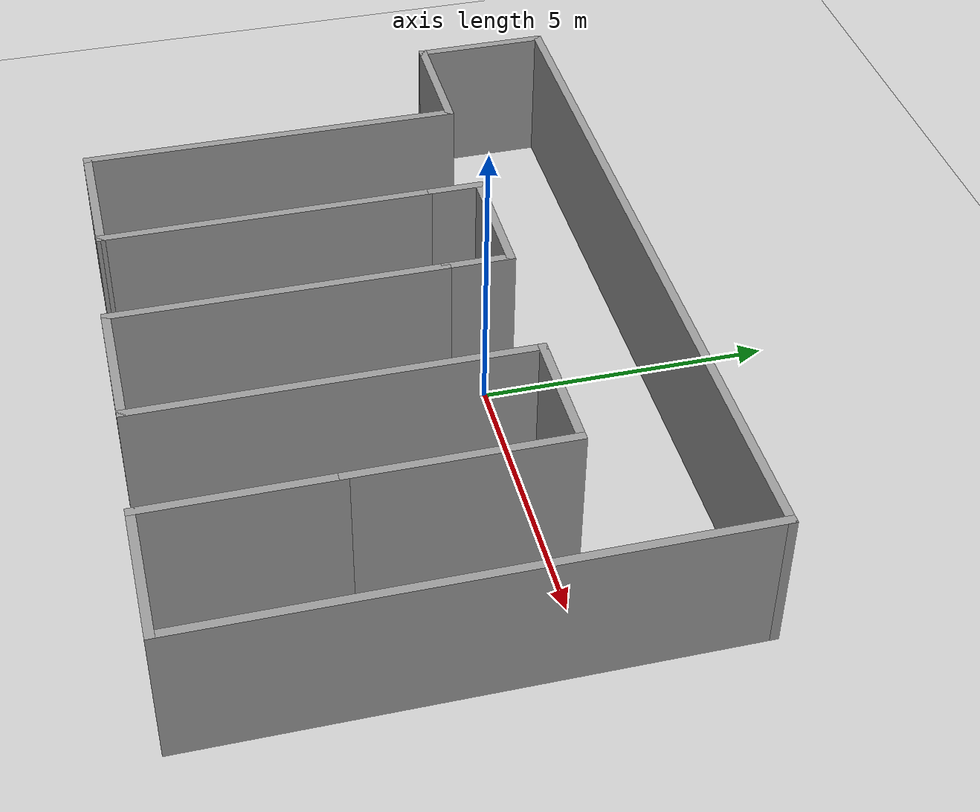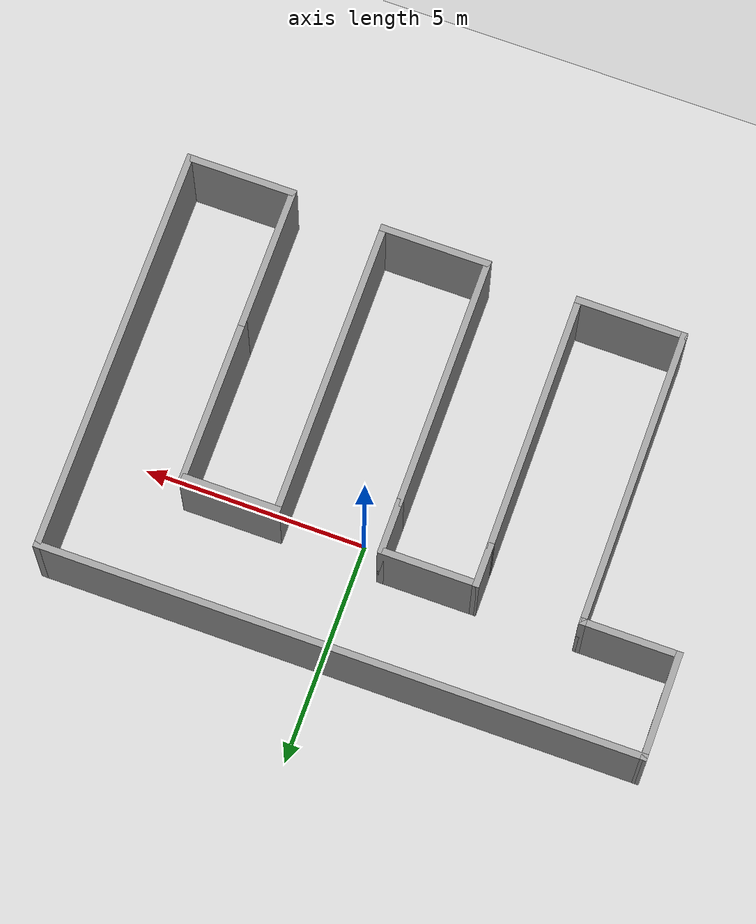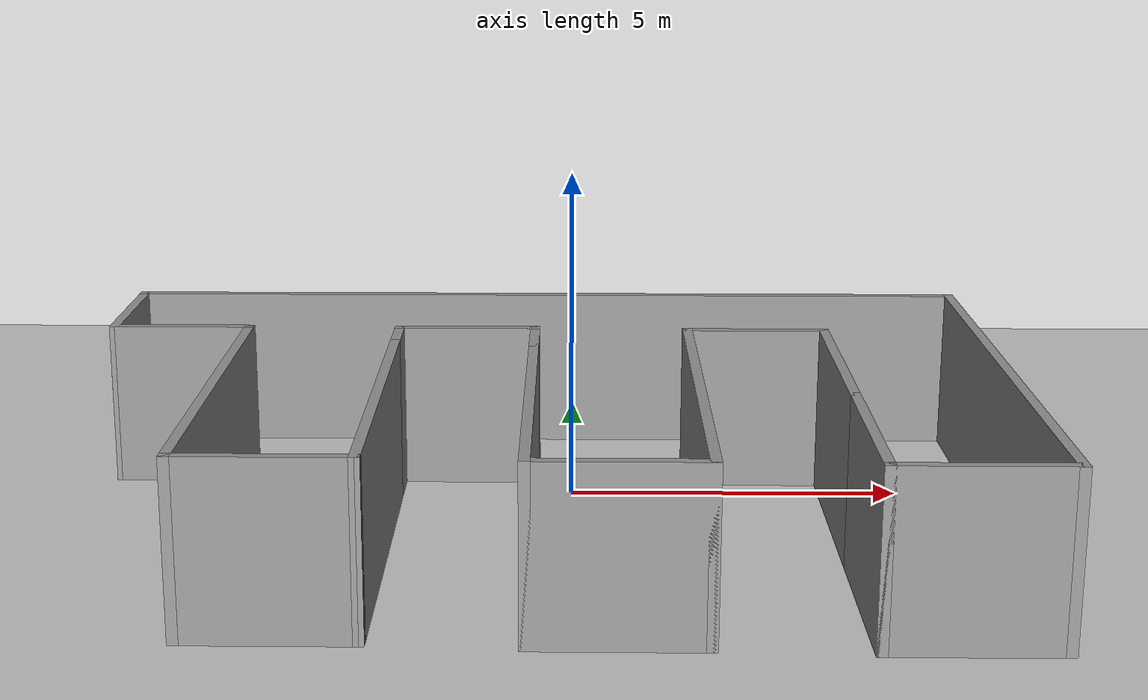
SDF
<sdf version="1.7">
 <world name="default">
  <light name="sun" type="directional">
   <pose>0 0 10 0 -0 0</pose>
   <diffuse>0.8 0.8 0.8 1</diffuse>
   <specular>0.2 0.2 0.2 1</specular>
   <attenuation>
    <range>1000</range>
    <constant>0.9</constant>
    <linear>0.01</linear>
    <quadratic>0.001</quadratic>
   </attenuation>
   <direction>-0.5 0.1 -0.9</direction>
   <spot><inner_angle>0</inner_angle><outer_angle>0</outer_angle><falloff>0</falloff></spot>
  </light>
  <model name="ground_plane">
   <static>1</static>
   <link name="link">
    <collision name="collision">
     <geometry><plane><normal>0 0 1</normal><size>100 100</size></plane></geometry>
     <surface><friction><ode><mu>100</mu><mu2>50</mu2></ode></friction></surface>
    </collision>
    <visual name="visual">
     <cast_shadows>0</cast_shadows>
     <geometry><plane><normal>0 0 1</normal><size>100 100</size></plane></geometry>
     <material>
      <script><uri>file://media/materials/scripts/gazebo.material</uri><name>Gazebo/Grey</name></script>
     </material>
    </visual>
   </link>
  </model>
  <gravity>0 0 -9.8</gravity>
  <magnetic_field>6e-06 2.3e-05 -4.2e-05</magnetic_field>
  <atmosphere type="adiabatic"/>
  <physics type="ode">
   <max_step_size>0.001</max_step_size>
   <real_time_factor>1</real_time_factor>
   <real_time_update_rate>1000</real_time_update_rate>
  </physics>
  <scene><ambient>0.4 0.4 0.4 1</ambient><background>0.7 0.7 0.7 1</background><shadows>1</shadows></scene>
  <spherical_coordinates>
   <surface_model>EARTH_WGS84</surface_model>
   <latitude_deg>0</latitude_deg>
   <longitude_deg>0</longitude_deg>
   <elevation>0</elevation>
   <heading_deg>0</heading_deg>
  </spherical_coordinates>
  <model name="three_hallways">
   <pose>-0.445475 -1.69659 0 0 -0 0</pose>
   <link name="Wall_100">
    <collision name="Wall_100_Collision">
     <geometry><box><size>2.5 0.15 2.5</size></box></geometry>
     <pose>0 0 1.25 0 -0 0</pose>
    </collision>
    <visual name="Wall_100_Visual">
     <pose>0 0 1.25 0 -0 0</pose>
     <geometry><box><size>2.5 0.15 2.5</size></box></geometry>
     <material>
      <script><uri>file://media/materials/scripts/gazebo.material</uri><name>Gazebo/Grey</name></script>
      <ambient>1 1 1 1</ambient>
     </material>
     <meta><layer>0</layer></meta>
    </visual>
    <pose>5.50012 -4.55012 0 0 -0 0</pose>
   </link>
   <link name="Wall_101">
    <collision name="Wall_101_Collision">
     <geometry><box><size>9.25 0.15 2.5</size></box></geometry>
     <pose>0 0 1.25 0 -0 0</pose>
    </collision>
    <visual name="Wall_101_Visual">
     <pose>0 0 1.25 0 -0 0</pose>
     <geometry><box><size>9.25 0.15 2.5</size></box></geometry>
     <material>
      <script><uri>file://media/materials/scripts/gazebo.material</uri><name>Gazebo/Grey</name></script>
      <ambient>1 1 1 1</ambient>
     </material>
     <meta><layer>0</layer></meta>
    </visual>
    <pose>6.67512 -0.000124 0 0 -0 1.5708</pose>
   </link>
   <link name="Wall_103">
    <collision name="Wall_103_Collision">
     <geometry><box><size>13.5 0.15 2.5</size></box></geometry>
     <pose>0 0 1.25 0 -0 0</pose>
    </collision>
    <visual name="Wall_103_Visual">
     <pose>0 0 1.25 0 -0 0</pose>
     <geometry><box><size>13.5 0.15 2.5</size></box></geometry>
     <material>
      <script><uri>file://media/materials/scripts/gazebo.material</uri><name>Gazebo/Grey</name></script>
      <ambient>1 1 1 1</ambient>
     </material>
     <meta><layer>0</layer></meta>
    </visual>
    <pose>0.000124 4.54988 0 0 -0 3.14159</pose>
   </link>
   <link name="Wall_104">
    <collision name="Wall_104_Collision">
     <geometry><box><size>2.42856 0.15 2.5</size></box></geometry>
     <pose>0 0 1.25 0 -0 0</pose>
    </collision>
    <visual name="Wall_104_Visual">
     <pose>0 0 1.25 0 -0 0</pose>
     <geometry><box><size>2.42856 0.15 2.5</size></box></geometry>
     <material>
      <script><uri>file://media/materials/scripts/gazebo.material</uri><name>Gazebo/Grey</name></script>
      <ambient>1 1 1 1</ambient>
     </material>
     <meta><layer>0</layer></meta>
    </visual>
    <pose>-6.6711 3.4106 0 0 -0 -1.56748</pose>
   </link>
   <link name="Wall_78">
    <collision name="Wall_78_Collision">
     <geometry><box><size>2.25 0.15 2.5</size></box></geometry>
     <pose>0 0 1.25 0 -0 0</pose>
    </collision>
    <visual name="Wall_78_Visual">
     <pose>0 0 1.25 0 -0 0</pose>
     <geometry><box><size>2.25 0.15 2.5</size></box></geometry>
     <material>
      <script><uri>file://media/materials/scripts/gazebo.material</uri><name>Gazebo/Grey</name></script>
      <ambient>1 1 1 1</ambient>
     </material>
     <meta><layer>0</layer></meta>
    </visual>
    <pose>-5.61731 2.27133 0 0 -0 3.14159</pose>
   </link>
   <link name="Wall_80">
    <collision name="Wall_80_Collision">
     <geometry><box><size>0.15 0.15 2.5</size></box></geometry>
     <pose>0 0 1.25 0 -0 0</pose>
    </collision>
    <visual name="Wall_80_Visual">
     <pose>0 0 1.25 0 -0 0</pose>
     <geometry><box><size>0.15 0.15 2.5</size></box></geometry>
     <material>
      <script><uri>file://media/materials/scripts/gazebo.material</uri><name>Gazebo/Grey</name></script>
      <ambient>1 1 1 1</ambient>
     </material>
     <meta><layer>0</layer></meta>
    </visual>
    <pose>-4.56731 2.27133 0 0 -0 0</pose>
   </link>
   <link name="Wall_81">
    <collision name="Wall_81_Collision">
     <geometry><box><size>6.75 0.15 2.5</size></box></geometry>
     <pose>0 0 1.25 0 -0 0</pose>
    </collision>
    <visual name="Wall_81_Visual">
     <pose>0 0 1.25 0 -0 0</pose>
     <geometry><box><size>6.75 0.15 2.5</size></box></geometry>
     <material>
      <script><uri>file://media/materials/scripts/gazebo.material</uri><name>Gazebo/Grey</name></script>
      <ambient>1 1 1 1</ambient>
     </material>
     <meta><layer>0</layer></meta>
    </visual>
    <pose>-4.56731 -1.02867 0 0 -0 -1.5708</pose>
   </link>
   <link name="Wall_83">
    <collision name="Wall_83_Collision">
     <geometry><box><size>2.5 0.15 2.5</size></box></geometry>
     <pose>0 0 1.25 0 -0 0</pose>
    </collision>
    <visual name="Wall_83_Visual">
     <pose>0 0 1.25 0 -0 0</pose>
     <geometry><box><size>2.5 0.15 2.5</size></box></geometry>
     <material>
      <script><uri>file://media/materials/scripts/gazebo.material</uri><name>Gazebo/Grey</name></script>
      <ambient>1 1 1 1</ambient>
     </material>
     <meta><layer>0</layer></meta>
    </visual>
    <pose>-3.39231 -4.32867 0 0 -0 0</pose>
   </link>
   <link name="Wall_84">
    <collision name="Wall_84_Collision">
     <geometry><box><size>5.87099 0.15 2.5</size></box></geometry>
     <pose>0 0 1.25 0 -0 0</pose>
    </collision>
    <visual name="Wall_84_Visual">
     <pose>0 0 1.25 0 -0 0</pose>
     <geometry><box><size>5.87099 0.15 2.5</size></box></geometry>
     <material>
      <script><uri>file://media/materials/scripts/gazebo.material</uri><name>Gazebo/Grey</name></script>
      <ambient>1 1 1 1</ambient>
     </material>
     <meta><layer>0</layer></meta>
    </visual>
    <pose>-2.2211 -1.46818 0 0 -0 1.57212</pose>
   </link>
   <link name="Wall_85">
    <collision name="Wall_85_Collision">
     <geometry><box><size>1 0.15 2.5</size></box></geometry>
     <pose>0 0 1.25 0 -0 0</pose>
    </collision>
    <visual name="Wall_85_Visual">
     <pose>0 0 1.25 0 -0 0</pose>
     <geometry><box><size>1 0.15 2.5</size></box></geometry>
     <material>
      <script><uri>file://media/materials/scripts/gazebo.material</uri><name>Gazebo/Grey</name></script>
      <ambient>1 1 1 1</ambient>
     </material>
     <meta><layer>0</layer></meta>
    </visual>
    <pose>-2.22488 1.82488 0 0 -0 1.5708</pose>
   </link>
   <link name="Wall_87">
    <collision name="Wall_87_Collision">
     <geometry><box><size>2.25 0.15 2.5</size></box></geometry>
     <pose>0 0 1.25 0 -0 0</pose>
    </collision>
    <visual name="Wall_87_Visual">
     <pose>0 0 1.25 0 -0 0</pose>
     <geometry><box><size>2.25 0.15 2.5</size></box></geometry>
     <material>
      <script><uri>file://media/materials/scripts/gazebo.material</uri><name>Gazebo/Grey</name></script>
      <ambient>1 1 1 1</ambient>
     </material>
     <meta><layer>0</layer></meta>
    </visual>
    <pose>-1.17488 2.24988 0 0 -0 0</pose>
   </link>
   <link name="Wall_88">
    <collision name="Wall_88_Collision">
     <geometry><box><size>1.25 0.15 2.5</size></box></geometry>
     <pose>0 0 1.25 0 -0 0</pose>
    </collision>
    <visual name="Wall_88_Visual">
     <pose>0 0 1.25 0 -0 0</pose>
     <geometry><box><size>1.25 0.15 2.5</size></box></geometry>
     <material>
      <script><uri>file://media/materials/scripts/gazebo.material</uri><name>Gazebo/Grey</name></script>
      <ambient>1 1 1 1</ambient>
     </material>
     <meta><layer>0</layer></meta>
    </visual>
    <pose>-0.124876 1.69988 0 0 -0 -1.5708</pose>
   </link>
   <link name="Wall_89">
    <collision name="Wall_89_Collision">
     <geometry><box><size>5.75 0.15 2.5</size></box></geometry>
     <pose>0 0 1.25 0 -0 0</pose>
    </collision>
    <visual name="Wall_89_Visual">
     <pose>0 0 1.25 0 -0 0</pose>
     <geometry><box><size>5.75 0.15 2.5</size></box></geometry>
     <material>
      <script><uri>file://media/materials/scripts/gazebo.material</uri><name>Gazebo/Grey</name></script>
      <ambient>1 1 1 1</ambient>
     </material>
     <meta><layer>0</layer></meta>
    </visual>
    <pose>-0.124876 -1.65012 0 0 -0 -1.5708</pose>
   </link>
   <link name="Wall_90">
    <collision name="Wall_90_Collision">
     <geometry><box><size>2.5 0.15 2.5</size></box></geometry>
     <pose>0 0 1.25 0 -0 0</pose>
    </collision>
    <visual name="Wall_90_Visual">
     <pose>0 0 1.25 0 -0 0</pose>
     <geometry><box><size>2.5 0.15 2.5</size></box></geometry>
     <material>
      <script><uri>file://media/materials/scripts/gazebo.material</uri><name>Gazebo/Grey</name></script>
      <ambient>1 1 1 1</ambient>
     </material>
     <meta><layer>0</layer></meta>
    </visual>
    <pose>1.05012 -4.45012 0 0 -0 0</pose>
   </link>
   <link name="Wall_92">
    <collision name="Wall_92_Collision">
     <geometry><box><size>6.75 0.15 2.5</size></box></geometry>
     <pose>0 0 1.25 0 -0 0</pose>
    </collision>
    <visual name="Wall_92_Visual">
     <pose>0 0 1.25 0 -0 0</pose>
     <geometry><box><size>6.75 0.15 2.5</size></box></geometry>
     <material>
      <script><uri>file://media/materials/scripts/gazebo.material</uri><name>Gazebo/Grey</name></script>
      <ambient>1 1 1 1</ambient>
     </material>
     <meta><layer>0</layer></meta>
    </visual>
    <pose>2.22512 -1.15012 0 0 -0 1.5708</pose>
   </link>
   <link name="Wall_95">
    <collision name="Wall_95_Collision">
     <geometry><box><size>2.25 0.15 2.5</size></box></geometry>
     <pose>0 0 1.25 0 -0 0</pose>
    </collision>
    <visual name="Wall_95_Visual">
     <pose>0 0 1.25 0 -0 0</pose>
     <geometry><box><size>2.25 0.15 2.5</size></box></geometry>
     <material>
      <script><uri>file://media/materials/scripts/gazebo.material</uri><name>Gazebo/Grey</name></script>
      <ambient>1 1 1 1</ambient>
     </material>
     <meta><layer>0</layer></meta>
    </visual>
    <pose>3.27512 2.14988 0 0 -0 0</pose>
   </link>
   <link name="Wall_98">
    <collision name="Wall_98_Collision">
     <geometry><box><size>3.75 0.15 2.5</size></box></geometry>
     <pose>0 0 1.25 0 -0 0</pose>
    </collision>
    <visual name="Wall_98_Visual">
     <pose>0 0 1.25 0 -0 0</pose>
     <geometry><box><size>3.75 0.15 2.5</size></box></geometry>
     <material>
      <script><uri>file://media/materials/scripts/gazebo.material</uri><name>Gazebo/Grey</name></script>
      <ambient>1 1 1 1</ambient>
     </material>
     <meta><layer>0</layer></meta>
    </visual>
    <pose>4.32512 0.349876 0 0 -0 -1.5708</pose>
   </link>
   <link name="Wall_99">
    <collision name="Wall_99_Collision">
     <geometry><box><size>3.25 0.15 2.5</size></box></geometry>
     <pose>0 0 1.25 0 -0 0</pose>
    </collision>
    <visual name="Wall_99_Visual">
     <pose>0 0 1.25 0 -0 0</pose>
     <geometry><box><size>3.25 0.15 2.5</size></box></geometry>
     <material>
      <script><uri>file://media/materials/scripts/gazebo.material</uri><name>Gazebo/Grey</name></script>
      <ambient>1 1 1 1</ambient>
     </material>
     <meta><layer>0</layer></meta>
    </visual>
    <pose>4.32512 -3.00012 0 0 -0 -1.5708</pose>
   </link>
   <static>1</static>
  </model>
 </world>
</sdf>
